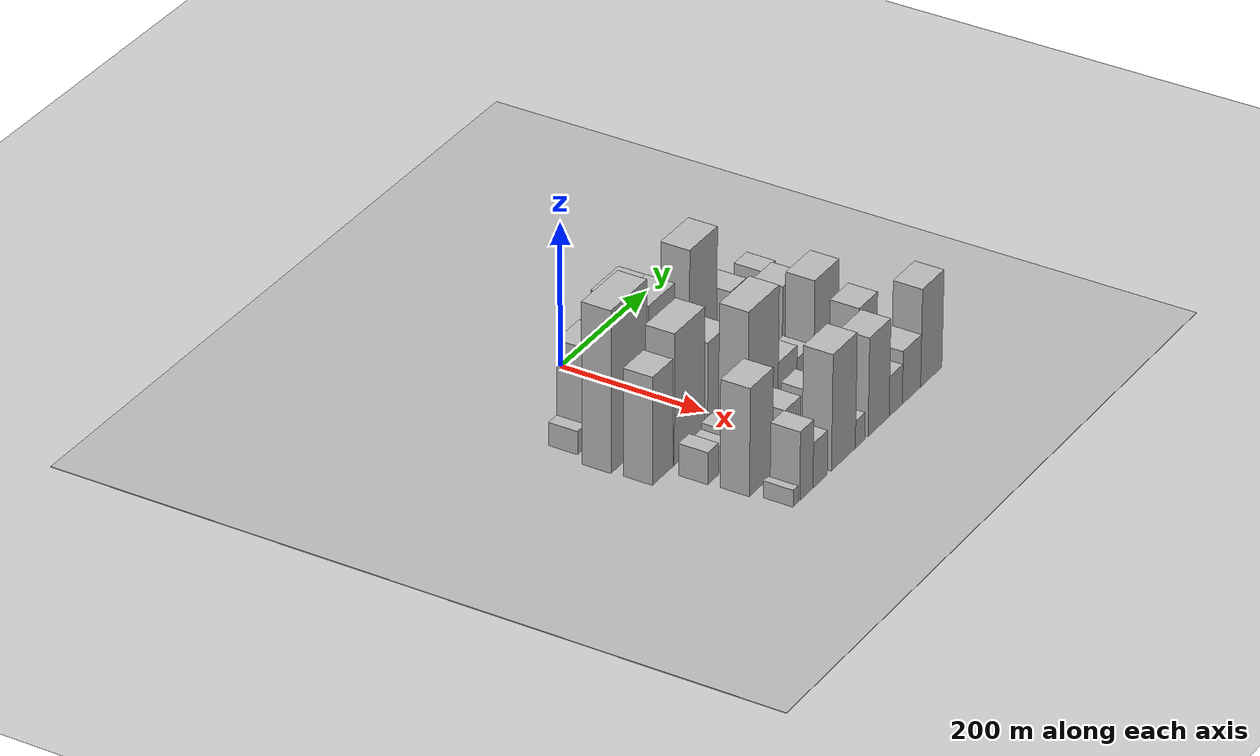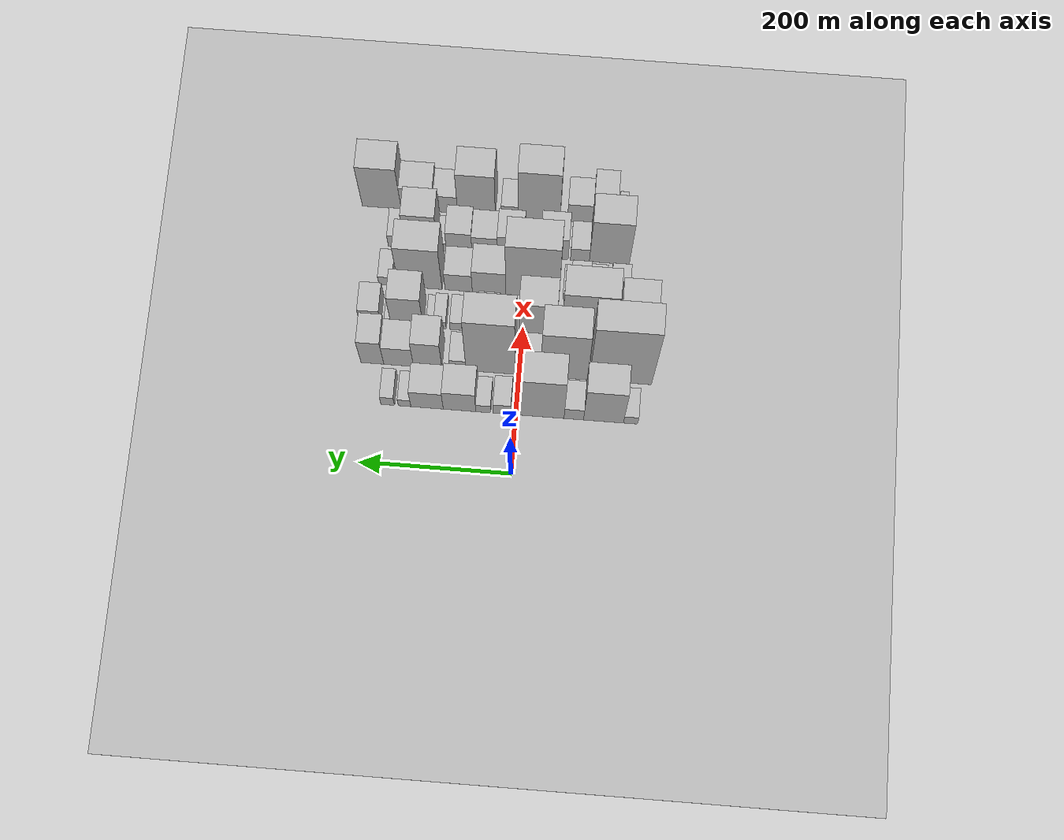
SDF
<sdf version="1.6">
 <world name="default">
  <include><name>ground_plane_1</name><uri>model://HANNAS_ground_plane</uri></include>
  <include>
   <name>ground_plane_2</name>
   <uri>model://HANNAS_ground_plane</uri>
   <pose>100 0 0  0 0 0</pose>
  </include>
  <model name="building_18">
   <static>1</static>
   <pose>100.0000 -150.8019 0 0.000000 0.000000 0.000000</pose>
   <link name="link">
    <pose>0 0 16.50 0 0 0</pose>
    <collision name="collision"><geometry><box><size>40.0000 18.6569 33.0000</size></box></geometry></collision>
    <visual name="visual">
     <cast_shadows>0</cast_shadows>
     <geometry><box><size>40.0000 18.6569 33.0000</size></box></geometry>
     <material>
      <script>
       <uri>model://HANNAS_wall/materials/scripts</uri>
       <uri>model://HANNAS_wall/materials/textures</uri>
       <name>vrc/HANNAS_wall</name>
      </script>
     </material>
    </visual>
   </link>
  </model>
  <model name="building_19">
   <static>1</static>
   <pose>100.0000 -115.2629 0 0.000000 0.000000 0.000000</pose>
   <link name="link">
    <pose>0 0 69.00 0 0 0</pose>
    <collision name="collision"><geometry><box><size>40.0000 52.4211 138.0000</size></box></geometry></collision>
    <visual name="visual">
     <cast_shadows>0</cast_shadows>
     <geometry><box><size>40.0000 52.4211 138.0000</size></box></geometry>
     <material>
      <script>
       <uri>model://HANNAS_wall/materials/scripts</uri>
       <uri>model://HANNAS_wall/materials/textures</uri>
       <name>vrc/HANNAS_wall</name>
      </script>
     </material>
    </visual>
   </link>
  </model>
  <model name="building_20">
   <static>1</static>
   <pose>100.0000 -76.1995 0 0.000000 0.000000 0.000000</pose>
   <link name="link">
    <pose>0 0 24.00 0 0 0</pose>
    <collision name="collision"><geometry><box><size>40.0000 25.7056 48.0000</size></box></geometry></collision>
    <visual name="visual">
     <cast_shadows>0</cast_shadows>
     <geometry><box><size>40.0000 25.7056 48.0000</size></box></geometry>
     <material>
      <script>
       <uri>model://HANNAS_wall/materials/scripts</uri>
       <uri>model://HANNAS_wall/materials/textures</uri>
       <name>vrc/HANNAS_wall</name>
      </script>
     </material>
    </visual>
   </link>
  </model>
  <model name="building_21">
   <static>1</static>
   <pose>100.0000 -31.2883 0 0.000000 0.000000 0.000000</pose>
   <link name="link">
    <pose>0 0 82.50 0 0 0</pose>
    <collision name="collision"><geometry><box><size>40.0000 64.1168 165.0000</size></box></geometry></collision>
    <visual name="visual">
     <cast_shadows>0</cast_shadows>
     <geometry><box><size>40.0000 64.1168 165.0000</size></box></geometry>
     <material>
      <script>
       <uri>model://HANNAS_wall/materials/scripts</uri>
       <uri>model://HANNAS_wall/materials/textures</uri>
       <name>vrc/HANNAS_wall</name>
      </script>
     </material>
    </visual>
   </link>
  </model>
  <model name="building_22">
   <static>1</static>
   <pose>100.0000 18.5439 0 0.000000 0.000000 0.000000</pose>
   <link name="link">
    <pose>0 0 21.00 0 0 0</pose>
    <collision name="collision"><geometry><box><size>40.0000 23.5476 42.0000</size></box></geometry></collision>
    <visual name="visual">
     <cast_shadows>0</cast_shadows>
     <geometry><box><size>40.0000 23.5476 42.0000</size></box></geometry>
     <material>
      <script>
       <uri>model://HANNAS_wall/materials/scripts</uri>
       <uri>model://HANNAS_wall/materials/textures</uri>
       <name>vrc/HANNAS_wall</name>
      </script>
     </material>
    </visual>
   </link>
  </model>
  <model name="building_23">
   <static>1</static>
   <pose>100.0000 43.1436 0 0.000000 0.000000 0.000000</pose>
   <link name="link">
    <pose>0 0 16.50 0 0 0</pose>
    <collision name="collision"><geometry><box><size>40.0000 19.6517 33.0000</size></box></geometry></collision>
    <visual name="visual">
     <cast_shadows>0</cast_shadows>
     <geometry><box><size>40.0000 19.6517 33.0000</size></box></geometry>
     <material>
      <script>
       <uri>model://HANNAS_wall/materials/scripts</uri>
       <uri>model://HANNAS_wall/materials/textures</uri>
       <name>vrc/HANNAS_wall</name>
      </script>
     </material>
    </visual>
   </link>
  </model>
  <model name="building_24">
   <static>1</static>
   <pose>100.0000 74.4396 0 0.000000 0.000000 0.000000</pose>
   <link name="link">
    <pose>0 0 40.50 0 0 0</pose>
    <collision name="collision"><geometry><box><size>40.0000 42.9403 81.0000</size></box></geometry></collision>
    <visual name="visual">
     <cast_shadows>0</cast_shadows>
     <geometry><box><size>40.0000 42.9403 81.0000</size></box></geometry>
     <material>
      <script>
       <uri>model://HANNAS_wall/materials/scripts</uri>
       <uri>model://HANNAS_wall/materials/textures</uri>
       <name>vrc/HANNAS_wall</name>
      </script>
     </material>
    </visual>
   </link>
  </model>
  <model name="building_25">
   <static>1</static>
   <pose>100.0000 117.2887 0 0.000000 0.000000 0.000000</pose>
   <link name="link">
    <pose>0 0 36.00 0 0 0</pose>
    <collision name="collision"><geometry><box><size>40.0000 42.7581 72.0000</size></box></geometry></collision>
    <visual name="visual">
     <cast_shadows>0</cast_shadows>
     <geometry><box><size>40.0000 42.7581 72.0000</size></box></geometry>
     <material>
      <script>
       <uri>model://HANNAS_wall/materials/scripts</uri>
       <uri>model://HANNAS_wall/materials/textures</uri>
       <name>vrc/HANNAS_wall</name>
      </script>
     </material>
    </visual>
   </link>
  </model>
  <model name="building_26">
   <static>1</static>
   <pose>100.0000 146.9715 0 0.000000 0.000000 0.000000</pose>
   <link name="link">
    <pose>0 0 15.00 0 0 0</pose>
    <collision name="collision"><geometry><box><size>40.0000 16.6075 30.0000</size></box></geometry></collision>
    <visual name="visual">
     <cast_shadows>0</cast_shadows>
     <geometry><box><size>40.0000 16.6075 30.0000</size></box></geometry>
     <material>
      <script>
       <uri>model://HANNAS_wall/materials/scripts</uri>
       <uri>model://HANNAS_wall/materials/textures</uri>
       <name>vrc/HANNAS_wall</name>
      </script>
     </material>
    </visual>
   </link>
  </model>
  <model name="building_27">
   <static>1</static>
   <pose>100.0000 169.2999 0 0.000000 0.000000 0.000000</pose>
   <link name="link">
    <pose>0 0 18.00 0 0 0</pose>
    <collision name="collision"><geometry><box><size>40.0000 18.0493 36.0000</size></box></geometry></collision>
    <visual name="visual">
     <cast_shadows>0</cast_shadows>
     <geometry><box><size>40.0000 18.0493 36.0000</size></box></geometry>
     <material>
      <script>
       <uri>model://HANNAS_wall/materials/scripts</uri>
       <uri>model://HANNAS_wall/materials/textures</uri>
       <name>vrc/HANNAS_wall</name>
      </script>
     </material>
    </visual>
   </link>
  </model>
  <model name="building_70">
   <static>1</static>
   <pose>155.0000 -133.8732 0 0.000000 0.000000 0.000000</pose>
   <link name="link">
    <pose>0 0 112.50 0 0 0</pose>
    <collision name="collision"><geometry><box><size>40.0000 82.3018 225.0000</size></box></geometry></collision>
    <visual name="visual">
     <cast_shadows>0</cast_shadows>
     <geometry><box><size>40.0000 82.3018 225.0000</size></box></geometry>
     <material>
      <script>
       <uri>model://HANNAS_wall/materials/scripts</uri>
       <uri>model://HANNAS_wall/materials/textures</uri>
       <name>vrc/HANNAS_wall</name>
      </script>
     </material>
    </visual>
   </link>
  </model>
  <model name="building_71">
   <static>1</static>
   <pose>155.0000 -59.0609 0 0.000000 0.000000 0.000000</pose>
   <link name="link">
    <pose>0 0 93.00 0 0 0</pose>
    <collision name="collision"><geometry><box><size>40.0000 61.3227 186.0000</size></box></geometry></collision>
    <visual name="visual">
     <cast_shadows>0</cast_shadows>
     <geometry><box><size>40.0000 61.3227 186.0000</size></box></geometry>
     <material>
      <script>
       <uri>model://HANNAS_wall/materials/scripts</uri>
       <uri>model://HANNAS_wall/materials/textures</uri>
       <name>vrc/HANNAS_wall</name>
      </script>
     </material>
    </visual>
   </link>
  </model>
  <model name="building_72">
   <static>1</static>
   <pose>155.0000 -11.2397 0 0.000000 0.000000 0.000000</pose>
   <link name="link">
    <pose>0 0 31.50 0 0 0</pose>
    <collision name="collision"><geometry><box><size>40.0000 34.3198 63.0000</size></box></geometry></collision>
    <visual name="visual">
     <cast_shadows>0</cast_shadows>
     <geometry><box><size>40.0000 34.3198 63.0000</size></box></geometry>
     <material>
      <script>
       <uri>model://HANNAS_wall/materials/scripts</uri>
       <uri>model://HANNAS_wall/materials/textures</uri>
       <name>vrc/HANNAS_wall</name>
      </script>
     </material>
    </visual>
   </link>
  </model>
  <model name="building_73">
   <static>1</static>
   <pose>155.0000 38.2795 0 0.000000 0.000000 0.000000</pose>
   <link name="link">
    <pose>0 0 106.50 0 0 0</pose>
    <collision name="collision"><geometry><box><size>40.0000 64.7186 213.0000</size></box></geometry></collision>
    <visual name="visual">
     <cast_shadows>0</cast_shadows>
     <geometry><box><size>40.0000 64.7186 213.0000</size></box></geometry>
     <material>
      <script>
       <uri>model://HANNAS_wall/materials/scripts</uri>
       <uri>model://HANNAS_wall/materials/textures</uri>
       <name>vrc/HANNAS_wall</name>
      </script>
     </material>
    </visual>
   </link>
  </model>
  <model name="building_74">
   <static>1</static>
   <pose>155.0000 81.6243 0 0.000000 0.000000 0.000000</pose>
   <link name="link">
    <pose>0 0 21.00 0 0 0</pose>
    <collision name="collision"><geometry><box><size>40.0000 21.9709 42.0000</size></box></geometry></collision>
    <visual name="visual">
     <cast_shadows>0</cast_shadows>
     <geometry><box><size>40.0000 21.9709 42.0000</size></box></geometry>
     <material>
      <script>
       <uri>model://HANNAS_wall/materials/scripts</uri>
       <uri>model://HANNAS_wall/materials/textures</uri>
       <name>vrc/HANNAS_wall</name>
      </script>
     </material>
    </visual>
   </link>
  </model>
  <model name="building_75">
   <static>1</static>
   <pose>155.0000 121.5219 0 0.000000 0.000000 0.000000</pose>
   <link name="link">
    <pose>0 0 52.50 0 0 0</pose>
    <collision name="collision"><geometry><box><size>40.0000 37.8243 105.0000</size></box></geometry></collision>
    <visual name="visual">
     <cast_shadows>0</cast_shadows>
     <geometry><box><size>40.0000 37.8243 105.0000</size></box></geometry>
     <material>
      <script>
       <uri>model://HANNAS_wall/materials/scripts</uri>
       <uri>model://HANNAS_wall/materials/textures</uri>
       <name>vrc/HANNAS_wall</name>
      </script>
     </material>
    </visual>
   </link>
  </model>
  <model name="building_76">
   <static>1</static>
   <pose>155.0000 160.1553 0 0.000000 0.000000 0.000000</pose>
   <link name="link">
    <pose>0 0 37.50 0 0 0</pose>
    <collision name="collision"><geometry><box><size>40.0000 39.4426 75.0000</size></box></geometry></collision>
    <visual name="visual">
     <cast_shadows>0</cast_shadows>
     <geometry><box><size>40.0000 39.4426 75.0000</size></box></geometry>
     <material>
      <script>
       <uri>model://HANNAS_wall/materials/scripts</uri>
       <uri>model://HANNAS_wall/materials/textures</uri>
       <name>vrc/HANNAS_wall</name>
      </script>
     </material>
    </visual>
   </link>
  </model>
  <model name="building_77">
   <static>1</static>
   <pose>155.0000 195.1086 0 0.000000 0.000000 0.000000</pose>
   <link name="link">
    <pose>0 0 46.50 0 0 0</pose>
    <collision name="collision"><geometry><box><size>40.0000 30.4640 93.0000</size></box></geometry></collision>
    <visual name="visual">
     <cast_shadows>0</cast_shadows>
     <geometry><box><size>40.0000 30.4640 93.0000</size></box></geometry>
     <material>
      <script>
       <uri>model://HANNAS_wall/materials/scripts</uri>
       <uri>model://HANNAS_wall/materials/textures</uri>
       <name>vrc/HANNAS_wall</name>
      </script>
     </material>
    </visual>
   </link>
  </model>
  <model name="building_119">
   <static>1</static>
   <pose>210.0000 -148.7562 0 0.000000 0.000000 0.000000</pose>
   <link name="link">
    <pose>0 0 75.00 0 0 0</pose>
    <collision name="collision"><geometry><box><size>40.0000 46.8835 150.0000</size></box></geometry></collision>
    <visual name="visual">
     <cast_shadows>0</cast_shadows>
     <geometry><box><size>40.0000 46.8835 150.0000</size></box></geometry>
     <material>
      <script>
       <uri>model://HANNAS_wall/materials/scripts</uri>
       <uri>model://HANNAS_wall/materials/textures</uri>
       <name>vrc/HANNAS_wall</name>
      </script>
     </material>
    </visual>
   </link>
  </model>
  <model name="building_120">
   <static>1</static>
   <pose>210.0000 -87.0264 0 0.000000 0.000000 0.000000</pose>
   <link name="link">
    <pose>0 0 91.50 0 0 0</pose>
    <collision name="collision"><geometry><box><size>40.0000 70.5760 183.0000</size></box></geometry></collision>
    <visual name="visual">
     <cast_shadows>0</cast_shadows>
     <geometry><box><size>40.0000 70.5760 183.0000</size></box></geometry>
     <material>
      <script>
       <uri>model://HANNAS_wall/materials/scripts</uri>
       <uri>model://HANNAS_wall/materials/textures</uri>
       <name>vrc/HANNAS_wall</name>
      </script>
     </material>
    </visual>
   </link>
  </model>
  <model name="building_121">
   <static>1</static>
   <pose>210.0000 -19.8621 0 0.000000 0.000000 0.000000</pose>
   <link name="link">
    <pose>0 0 64.50 0 0 0</pose>
    <collision name="collision"><geometry><box><size>40.0000 49.7526 129.0000</size></box></geometry></collision>
    <visual name="visual">
     <cast_shadows>0</cast_shadows>
     <geometry><box><size>40.0000 49.7526 129.0000</size></box></geometry>
     <material>
      <script>
       <uri>model://HANNAS_wall/materials/scripts</uri>
       <uri>model://HANNAS_wall/materials/textures</uri>
       <name>vrc/HANNAS_wall</name>
      </script>
     </material>
    </visual>
   </link>
  </model>
  <model name="building_122">
   <static>1</static>
   <pose>210.0000 16.7778 0 0.000000 0.000000 0.000000</pose>
   <link name="link">
    <pose>0 0 10.50 0 0 0</pose>
    <collision name="collision"><geometry><box><size>40.0000 9.5271 21.0000</size></box></geometry></collision>
    <visual name="visual">
     <cast_shadows>0</cast_shadows>
     <geometry><box><size>40.0000 9.5271 21.0000</size></box></geometry>
     <material>
      <script>
       <uri>model://HANNAS_wall/materials/scripts</uri>
       <uri>model://HANNAS_wall/materials/textures</uri>
       <name>vrc/HANNAS_wall</name>
      </script>
     </material>
    </visual>
   </link>
  </model>
  <model name="building_123">
   <static>1</static>
   <pose>210.0000 25.4149 0 0.000000 0.000000 0.000000</pose>
   <link name="link">
    <pose>0 0 9.00 0 0 0</pose>
    <collision name="collision"><geometry><box><size>40.0000 7.7472 18.0000</size></box></geometry></collision>
    <visual name="visual">
     <cast_shadows>0</cast_shadows>
     <geometry><box><size>40.0000 7.7472 18.0000</size></box></geometry>
     <material>
      <script>
       <uri>model://HANNAS_wall/materials/scripts</uri>
       <uri>model://HANNAS_wall/materials/textures</uri>
       <name>vrc/HANNAS_wall</name>
      </script>
     </material>
    </visual>
   </link>
  </model>
  <model name="building_124">
   <static>1</static>
   <pose>210.0000 47.0669 0 0.000000 0.000000 0.000000</pose>
   <link name="link">
    <pose>0 0 25.50 0 0 0</pose>
    <collision name="collision"><geometry><box><size>40.0000 27.5567 51.0000</size></box></geometry></collision>
    <visual name="visual">
     <cast_shadows>0</cast_shadows>
     <geometry><box><size>40.0000 27.5567 51.0000</size></box></geometry>
     <material>
      <script>
       <uri>model://HANNAS_wall/materials/scripts</uri>
       <uri>model://HANNAS_wall/materials/textures</uri>
       <name>vrc/HANNAS_wall</name>
      </script>
     </material>
    </visual>
   </link>
  </model>
  <model name="building_125">
   <static>1</static>
   <pose>210.0000 66.3693 0 0.000000 0.000000 0.000000</pose>
   <link name="link">
    <pose>0 0 12.00 0 0 0</pose>
    <collision name="collision"><geometry><box><size>40.0000 11.0480 24.0000</size></box></geometry></collision>
    <visual name="visual">
     <cast_shadows>0</cast_shadows>
     <geometry><box><size>40.0000 11.0480 24.0000</size></box></geometry>
     <material>
      <script>
       <uri>model://HANNAS_wall/materials/scripts</uri>
       <uri>model://HANNAS_wall/materials/textures</uri>
       <name>vrc/HANNAS_wall</name>
      </script>
     </material>
    </visual>
   </link>
  </model>
  <model name="building_126">
   <static>1</static>
   <pose>210.0000 88.8799 0 0.000000 0.000000 0.000000</pose>
   <link name="link">
    <pose>0 0 15.00 0 0 0</pose>
    <collision name="collision"><geometry><box><size>40.0000 15.9732 30.0000</size></box></geometry></collision>
    <visual name="visual">
     <cast_shadows>0</cast_shadows>
     <geometry><box><size>40.0000 15.9732 30.0000</size></box></geometry>
     <material>
      <script>
       <uri>model://HANNAS_wall/materials/scripts</uri>
       <uri>model://HANNAS_wall/materials/textures</uri>
       <name>vrc/HANNAS_wall</name>
      </script>
     </material>
    </visual>
   </link>
  </model>
  <model name="building_127">
   <static>1</static>
   <pose>210.0000 109.9628 0 0.000000 0.000000 0.000000</pose>
   <link name="link">
    <pose>0 0 15.00 0 0 0</pose>
    <collision name="collision"><geometry><box><size>40.0000 16.1927 30.0000</size></box></geometry></collision>
    <visual name="visual">
     <cast_shadows>0</cast_shadows>
     <geometry><box><size>40.0000 16.1927 30.0000</size></box></geometry>
     <material>
      <script>
       <uri>model://HANNAS_wall/materials/scripts</uri>
       <uri>model://HANNAS_wall/materials/textures</uri>
       <name>vrc/HANNAS_wall</name>
      </script>
     </material>
    </visual>
   </link>
  </model>
  <model name="building_128">
   <static>1</static>
   <pose>210.0000 123.2397 0 0.000000 0.000000 0.000000</pose>
   <link name="link">
    <pose>0 0 10.50 0 0 0</pose>
    <collision name="collision"><geometry><box><size>40.0000 10.3610 21.0000</size></box></geometry></collision>
    <visual name="visual">
     <cast_shadows>0</cast_shadows>
     <geometry><box><size>40.0000 10.3610 21.0000</size></box></geometry>
     <material>
      <script>
       <uri>model://HANNAS_wall/materials/scripts</uri>
       <uri>model://HANNAS_wall/materials/textures</uri>
       <name>vrc/HANNAS_wall</name>
      </script>
     </material>
    </visual>
   </link>
  </model>
  <model name="building_129">
   <static>1</static>
   <pose>210.0000 153.9851 0 0.000000 0.000000 0.000000</pose>
   <link name="link">
    <pose>0 0 57.00 0 0 0</pose>
    <collision name="collision"><geometry><box><size>40.0000 43.1299 114.0000</size></box></geometry></collision>
    <visual name="visual">
     <cast_shadows>0</cast_shadows>
     <geometry><box><size>40.0000 43.1299 114.0000</size></box></geometry>
     <material>
      <script>
       <uri>model://HANNAS_wall/materials/scripts</uri>
       <uri>model://HANNAS_wall/materials/textures</uri>
       <name>vrc/HANNAS_wall</name>
      </script>
     </material>
    </visual>
   </link>
  </model>
  <model name="building_130">
   <static>1</static>
   <pose>210.0000 179.8836 0 0.000000 0.000000 0.000000</pose>
   <link name="link">
    <pose>0 0 10.50 0 0 0</pose>
    <collision name="collision"><geometry><box><size>40.0000 8.6671 21.0000</size></box></geometry></collision>
    <visual name="visual">
     <cast_shadows>0</cast_shadows>
     <geometry><box><size>40.0000 8.6671 21.0000</size></box></geometry>
     <material>
      <script>
       <uri>model://HANNAS_wall/materials/scripts</uri>
       <uri>model://HANNAS_wall/materials/textures</uri>
       <name>vrc/HANNAS_wall</name>
      </script>
     </material>
    </visual>
   </link>
  </model>
  <model name="building_131">
   <static>1</static>
   <pose>210.0000 203.4865 0 0.000000 0.000000 0.000000</pose>
   <link name="link">
    <pose>0 0 27.00 0 0 0</pose>
    <collision name="collision"><geometry><box><size>40.0000 28.5387 54.0000</size></box></geometry></collision>
    <visual name="visual">
     <cast_shadows>0</cast_shadows>
     <geometry><box><size>40.0000 28.5387 54.0000</size></box></geometry>
     <material>
      <script>
       <uri>model://HANNAS_wall/materials/scripts</uri>
       <uri>model://HANNAS_wall/materials/textures</uri>
       <name>vrc/HANNAS_wall</name>
      </script>
     </material>
    </visual>
   </link>
  </model>
  <model name="building_175">
   <static>1</static>
   <pose>265.0000 -125.1279 0 0.000000 0.000000 0.000000</pose>
   <link name="link">
    <pose>0 0 22.50 0 0 0</pose>
    <collision name="collision"><geometry><box><size>40.0000 25.0067 45.0000</size></box></geometry></collision>
    <visual name="visual">
     <cast_shadows>0</cast_shadows>
     <geometry><box><size>40.0000 25.0067 45.0000</size></box></geometry>
     <material>
      <script>
       <uri>model://HANNAS_wall/materials/scripts</uri>
       <uri>model://HANNAS_wall/materials/textures</uri>
       <name>vrc/HANNAS_wall</name>
      </script>
     </material>
    </visual>
   </link>
  </model>
  <model name="building_176">
   <static>1</static>
   <pose>265.0000 -95.9091 0 0.000000 0.000000 0.000000</pose>
   <link name="link">
    <pose>0 0 18.00 0 0 0</pose>
    <collision name="collision"><geometry><box><size>40.0000 21.4309 36.0000</size></box></geometry></collision>
    <visual name="visual">
     <cast_shadows>0</cast_shadows>
     <geometry><box><size>40.0000 21.4309 36.0000</size></box></geometry>
     <material>
      <script>
       <uri>model://HANNAS_wall/materials/scripts</uri>
       <uri>model://HANNAS_wall/materials/textures</uri>
       <name>vrc/HANNAS_wall</name>
      </script>
     </material>
    </visual>
   </link>
  </model>
  <model name="building_177">
   <static>1</static>
   <pose>265.0000 -72.2502 0 0.000000 0.000000 0.000000</pose>
   <link name="link">
    <pose>0 0 22.50 0 0 0</pose>
    <collision name="collision"><geometry><box><size>40.0000 25.8870 45.0000</size></box></geometry></collision>
    <visual name="visual">
     <cast_shadows>0</cast_shadows>
     <geometry><box><size>40.0000 25.8870 45.0000</size></box></geometry>
     <material>
      <script>
       <uri>model://HANNAS_wall/materials/scripts</uri>
       <uri>model://HANNAS_wall/materials/textures</uri>
       <name>vrc/HANNAS_wall</name>
      </script>
     </material>
    </visual>
   </link>
  </model>
  <model name="building_178">
   <static>1</static>
   <pose>265.0000 -54.4343 0 0.000000 0.000000 0.000000</pose>
   <link name="link">
    <pose>0 0 12.00 0 0 0</pose>
    <collision name="collision"><geometry><box><size>40.0000 9.7447 24.0000</size></box></geometry></collision>
    <visual name="visual">
     <cast_shadows>0</cast_shadows>
     <geometry><box><size>40.0000 9.7447 24.0000</size></box></geometry>
     <material>
      <script>
       <uri>model://HANNAS_wall/materials/scripts</uri>
       <uri>model://HANNAS_wall/materials/textures</uri>
       <name>vrc/HANNAS_wall</name>
      </script>
     </material>
    </visual>
   </link>
  </model>
  <model name="building_179">
   <static>1</static>
   <pose>265.0000 -8.8676 0 0.000000 0.000000 0.000000</pose>
   <link name="link">
    <pose>0 0 94.50 0 0 0</pose>
    <collision name="collision"><geometry><box><size>40.0000 71.3886 189.0000</size></box></geometry></collision>
    <visual name="visual">
     <cast_shadows>0</cast_shadows>
     <geometry><box><size>40.0000 71.3886 189.0000</size></box></geometry>
     <material>
      <script>
       <uri>model://HANNAS_wall/materials/scripts</uri>
       <uri>model://HANNAS_wall/materials/textures</uri>
       <name>vrc/HANNAS_wall</name>
      </script>
     </material>
    </visual>
   </link>
  </model>
  <model name="building_180">
   <static>1</static>
   <pose>265.0000 49.3287 0 0.000000 0.000000 0.000000</pose>
   <link name="link">
    <pose>0 0 40.50 0 0 0</pose>
    <collision name="collision"><geometry><box><size>40.0000 45.0041 81.0000</size></box></geometry></collision>
    <visual name="visual">
     <cast_shadows>0</cast_shadows>
     <geometry><box><size>40.0000 45.0041 81.0000</size></box></geometry>
     <material>
      <script>
       <uri>model://HANNAS_wall/materials/scripts</uri>
       <uri>model://HANNAS_wall/materials/textures</uri>
       <name>vrc/HANNAS_wall</name>
      </script>
     </material>
    </visual>
   </link>
  </model>
  <model name="building_181">
   <static>1</static>
   <pose>265.0000 90.1085 0 0.000000 0.000000 0.000000</pose>
   <link name="link">
    <pose>0 0 31.50 0 0 0</pose>
    <collision name="collision"><geometry><box><size>40.0000 36.5555 63.0000</size></box></geometry></collision>
    <visual name="visual">
     <cast_shadows>0</cast_shadows>
     <geometry><box><size>40.0000 36.5555 63.0000</size></box></geometry>
     <material>
      <script>
       <uri>model://HANNAS_wall/materials/scripts</uri>
       <uri>model://HANNAS_wall/materials/textures</uri>
       <name>vrc/HANNAS_wall</name>
      </script>
     </material>
    </visual>
   </link>
  </model>
  <model name="building_182">
   <static>1</static>
   <pose>265.0000 141.7088 0 0.000000 0.000000 0.000000</pose>
   <link name="link">
    <pose>0 0 75.00 0 0 0</pose>
    <collision name="collision"><geometry><box><size>40.0000 58.6450 150.0000</size></box></geometry></collision>
    <visual name="visual">
     <cast_shadows>0</cast_shadows>
     <geometry><box><size>40.0000 58.6450 150.0000</size></box></geometry>
     <material>
      <script>
       <uri>model://HANNAS_wall/materials/scripts</uri>
       <uri>model://HANNAS_wall/materials/textures</uri>
       <name>vrc/HANNAS_wall</name>
      </script>
     </material>
    </visual>
   </link>
  </model>
  <model name="building_183">
   <static>1</static>
   <pose>265.0000 187.7204 0 0.000000 0.000000 0.000000</pose>
   <link name="link">
    <pose>0 0 16.50 0 0 0</pose>
    <collision name="collision"><geometry><box><size>40.0000 19.3781 33.0000</size></box></geometry></collision>
    <visual name="visual">
     <cast_shadows>0</cast_shadows>
     <geometry><box><size>40.0000 19.3781 33.0000</size></box></geometry>
     <material>
      <script>
       <uri>model://HANNAS_wall/materials/scripts</uri>
       <uri>model://HANNAS_wall/materials/textures</uri>
       <name>vrc/HANNAS_wall</name>
      </script>
     </material>
    </visual>
   </link>
  </model>
  <model name="building_222">
   <static>1</static>
   <pose>320.0000 -108.2381 0 0.000000 0.000000 0.000000</pose>
   <link name="link">
    <pose>0 0 75.00 0 0 0</pose>
    <collision name="collision"><geometry><box><size>40.0000 53.8245 150.0000</size></box></geometry></collision>
    <visual name="visual">
     <cast_shadows>0</cast_shadows>
     <geometry><box><size>40.0000 53.8245 150.0000</size></box></geometry>
     <material>
      <script>
       <uri>model://HANNAS_wall/materials/scripts</uri>
       <uri>model://HANNAS_wall/materials/textures</uri>
       <name>vrc/HANNAS_wall</name>
      </script>
     </material>
    </visual>
   </link>
  </model>
  <model name="building_223">
   <static>1</static>
   <pose>320.0000 -68.5845 0 0.000000 0.000000 0.000000</pose>
   <link name="link">
    <pose>0 0 22.50 0 0 0</pose>
    <collision name="collision"><geometry><box><size>40.0000 25.4828 45.0000</size></box></geometry></collision>
    <visual name="visual">
     <cast_shadows>0</cast_shadows>
     <geometry><box><size>40.0000 25.4828 45.0000</size></box></geometry>
     <material>
      <script>
       <uri>model://HANNAS_wall/materials/scripts</uri>
       <uri>model://HANNAS_wall/materials/textures</uri>
       <name>vrc/HANNAS_wall</name>
      </script>
     </material>
    </visual>
   </link>
  </model>
  <model name="building_224">
   <static>1</static>
   <pose>320.0000 -33.8702 0 0.000000 0.000000 0.000000</pose>
   <link name="link">
    <pose>0 0 37.50 0 0 0</pose>
    <collision name="collision"><geometry><box><size>40.0000 37.9458 75.0000</size></box></geometry></collision>
    <visual name="visual">
     <cast_shadows>0</cast_shadows>
     <geometry><box><size>40.0000 37.9458 75.0000</size></box></geometry>
     <material>
      <script>
       <uri>model://HANNAS_wall/materials/scripts</uri>
       <uri>model://HANNAS_wall/materials/textures</uri>
       <name>vrc/HANNAS_wall</name>
      </script>
     </material>
    </visual>
   </link>
  </model>
  <model name="building_225">
   <static>1</static>
   <pose>320.0000 -3.2689 0 0.000000 0.000000 0.000000</pose>
   <link name="link">
    <pose>0 0 10.50 0 0 0</pose>
    <collision name="collision"><geometry><box><size>40.0000 9.2568 21.0000</size></box></geometry></collision>
    <visual name="visual">
     <cast_shadows>0</cast_shadows>
     <geometry><box><size>40.0000 9.2568 21.0000</size></box></geometry>
     <material>
      <script>
       <uri>model://HANNAS_wall/materials/scripts</uri>
       <uri>model://HANNAS_wall/materials/textures</uri>
       <name>vrc/HANNAS_wall</name>
      </script>
     </material>
    </visual>
   </link>
  </model>
  <model name="building_226">
   <static>1</static>
   <pose>320.0000 25.0802 0 0.000000 0.000000 0.000000</pose>
   <link name="link">
    <pose>0 0 34.50 0 0 0</pose>
    <collision name="collision"><geometry><box><size>40.0000 35.4413 69.0000</size></box></geometry></collision>
    <visual name="visual">
     <cast_shadows>0</cast_shadows>
     <geometry><box><size>40.0000 35.4413 69.0000</size></box></geometry>
     <material>
      <script>
       <uri>model://HANNAS_wall/materials/scripts</uri>
       <uri>model://HANNAS_wall/materials/textures</uri>
       <name>vrc/HANNAS_wall</name>
      </script>
     </material>
    </visual>
   </link>
  </model>
  <model name="building_227">
   <static>1</static>
   <pose>320.0000 59.9531 0 0.000000 0.000000 0.000000</pose>
   <link name="link">
    <pose>0 0 30.00 0 0 0</pose>
    <collision name="collision"><geometry><box><size>40.0000 34.3044 60.0000</size></box></geometry></collision>
    <visual name="visual">
     <cast_shadows>0</cast_shadows>
     <geometry><box><size>40.0000 34.3044 60.0000</size></box></geometry>
     <material>
      <script>
       <uri>model://HANNAS_wall/materials/scripts</uri>
       <uri>model://HANNAS_wall/materials/textures</uri>
       <name>vrc/HANNAS_wall</name>
      </script>
     </material>
    </visual>
   </link>
  </model>
  <model name="building_228">
   <static>1</static>
   <pose>320.0000 94.3920 0 0.000000 0.000000 0.000000</pose>
   <link name="link">
    <pose>0 0 34.50 0 0 0</pose>
    <collision name="collision"><geometry><box><size>40.0000 34.5735 69.0000</size></box></geometry></collision>
    <visual name="visual">
     <cast_shadows>0</cast_shadows>
     <geometry><box><size>40.0000 34.5735 69.0000</size></box></geometry>
     <material>
      <script>
       <uri>model://HANNAS_wall/materials/scripts</uri>
       <uri>model://HANNAS_wall/materials/textures</uri>
       <name>vrc/HANNAS_wall</name>
      </script>
     </material>
    </visual>
   </link>
  </model>
  <model name="building_229">
   <static>1</static>
   <pose>320.0000 117.3488 0 0.000000 0.000000 0.000000</pose>
   <link name="link">
    <pose>0 0 13.50 0 0 0</pose>
    <collision name="collision"><geometry><box><size>40.0000 11.3402 27.0000</size></box></geometry></collision>
    <visual name="visual">
     <cast_shadows>0</cast_shadows>
     <geometry><box><size>40.0000 11.3402 27.0000</size></box></geometry>
     <material>
      <script>
       <uri>model://HANNAS_wall/materials/scripts</uri>
       <uri>model://HANNAS_wall/materials/textures</uri>
       <name>vrc/HANNAS_wall</name>
      </script>
     </material>
    </visual>
   </link>
  </model>
  <model name="building_230">
   <static>1</static>
   <pose>320.0000 145.2753 0 0.000000 0.000000 0.000000</pose>
   <link name="link">
    <pose>0 0 61.50 0 0 0</pose>
    <collision name="collision"><geometry><box><size>40.0000 44.5128 123.0000</size></box></geometry></collision>
    <visual name="visual">
     <cast_shadows>0</cast_shadows>
     <geometry><box><size>40.0000 44.5128 123.0000</size></box></geometry>
     <material>
      <script>
       <uri>model://HANNAS_wall/materials/scripts</uri>
       <uri>model://HANNAS_wall/materials/textures</uri>
       <name>vrc/HANNAS_wall</name>
      </script>
     </material>
    </visual>
   </link>
  </model>
  <model name="building_231">
   <static>1</static>
   <pose>320.0000 178.7404 0 0.000000 0.000000 0.000000</pose>
   <link name="link">
    <pose>0 0 21.00 0 0 0</pose>
    <collision name="collision"><geometry><box><size>40.0000 22.4174 42.0000</size></box></geometry></collision>
    <visual name="visual">
     <cast_shadows>0</cast_shadows>
     <geometry><box><size>40.0000 22.4174 42.0000</size></box></geometry>
     <material>
      <script>
       <uri>model://HANNAS_wall/materials/scripts</uri>
       <uri>model://HANNAS_wall/materials/textures</uri>
       <name>vrc/HANNAS_wall</name>
      </script>
     </material>
    </visual>
   </link>
  </model>
  <model name="building_268">
   <static>1</static>
   <pose>375.0000 -122.5893 0 0.000000 0.000000 0.000000</pose>
   <link name="link">
    <pose>0 0 12.00 0 0 0</pose>
    <collision name="collision"><geometry><box><size>40.0000 11.4673 24.0000</size></box></geometry></collision>
    <visual name="visual">
     <cast_shadows>0</cast_shadows>
     <geometry><box><size>40.0000 11.4673 24.0000</size></box></geometry>
     <material>
      <script>
       <uri>model://HANNAS_wall/materials/scripts</uri>
       <uri>model://HANNAS_wall/materials/textures</uri>
       <name>vrc/HANNAS_wall</name>
      </script>
     </material>
    </visual>
   </link>
  </model>
  <model name="building_269">
   <static>1</static>
   <pose>375.0000 -97.1758 0 0.000000 0.000000 0.000000</pose>
   <link name="link">
    <pose>0 0 48.00 0 0 0</pose>
    <collision name="collision"><geometry><box><size>40.0000 31.3598 96.0000</size></box></geometry></collision>
    <visual name="visual">
     <cast_shadows>0</cast_shadows>
     <geometry><box><size>40.0000 31.3598 96.0000</size></box></geometry>
     <material>
      <script>
       <uri>model://HANNAS_wall/materials/scripts</uri>
       <uri>model://HANNAS_wall/materials/textures</uri>
       <name>vrc/HANNAS_wall</name>
      </script>
     </material>
    </visual>
   </link>
  </model>
  <model name="building_270">
   <static>1</static>
   <pose>375.0000 -64.6158 0 0.000000 0.000000 0.000000</pose>
   <link name="link">
    <pose>0 0 31.50 0 0 0</pose>
    <collision name="collision"><geometry><box><size>40.0000 33.7604 63.0000</size></box></geometry></collision>
    <visual name="visual">
     <cast_shadows>0</cast_shadows>
     <geometry><box><size>40.0000 33.7604 63.0000</size></box></geometry>
     <material>
      <script>
       <uri>model://HANNAS_wall/materials/scripts</uri>
       <uri>model://HANNAS_wall/materials/textures</uri>
       <name>vrc/HANNAS_wall</name>
      </script>
     </material>
    </visual>
   </link>
  </model>
  <model name="building_271">
   <static>1</static>
   <pose>375.0000 -9.0972 0 0.000000 0.000000 0.000000</pose>
   <link name="link">
    <pose>0 0 81.00 0 0 0</pose>
    <collision name="collision"><geometry><box><size>40.0000 57.2768 162.0000</size></box></geometry></collision>
    <visual name="visual">
     <cast_shadows>0</cast_shadows>
     <geometry><box><size>40.0000 57.2768 162.0000</size></box></geometry>
     <material>
      <script>
       <uri>model://HANNAS_wall/materials/scripts</uri>
       <uri>model://HANNAS_wall/materials/textures</uri>
       <name>vrc/HANNAS_wall</name>
      </script>
     </material>
    </visual>
   </link>
  </model>
  <model name="building_272">
   <static>1</static>
   <pose>375.0000 30.7865 0 0.000000 0.000000 0.000000</pose>
   <link name="link">
    <pose>0 0 19.50 0 0 0</pose>
    <collision name="collision"><geometry><box><size>40.0000 22.4905 39.0000</size></box></geometry></collision>
    <visual name="visual">
     <cast_shadows>0</cast_shadows>
     <geometry><box><size>40.0000 22.4905 39.0000</size></box></geometry>
     <material>
      <script>
       <uri>model://HANNAS_wall/materials/scripts</uri>
       <uri>model://HANNAS_wall/materials/textures</uri>
       <name>vrc/HANNAS_wall</name>
      </script>
     </material>
    </visual>
   </link>
  </model>
  <model name="building_273">
   <static>1</static>
   <pose>375.0000 75.6074 0 0.000000 0.000000 0.000000</pose>
   <link name="link">
    <pose>0 0 69.00 0 0 0</pose>
    <collision name="collision"><geometry><box><size>40.0000 51.1513 138.0000</size></box></geometry></collision>
    <visual name="visual">
     <cast_shadows>0</cast_shadows>
     <geometry><box><size>40.0000 51.1513 138.0000</size></box></geometry>
     <material>
      <script>
       <uri>model://HANNAS_wall/materials/scripts</uri>
       <uri>model://HANNAS_wall/materials/textures</uri>
       <name>vrc/HANNAS_wall</name>
      </script>
     </material>
    </visual>
   </link>
  </model>
  <model name="building_274">
   <static>1</static>
   <pose>375.0000 117.1706 0 0.000000 0.000000 0.000000</pose>
   <link name="link">
    <pose>0 0 28.50 0 0 0</pose>
    <collision name="collision"><geometry><box><size>40.0000 31.9752 57.0000</size></box></geometry></collision>
    <visual name="visual">
     <cast_shadows>0</cast_shadows>
     <geometry><box><size>40.0000 31.9752 57.0000</size></box></geometry>
     <material>
      <script>
       <uri>model://HANNAS_wall/materials/scripts</uri>
       <uri>model://HANNAS_wall/materials/textures</uri>
       <name>vrc/HANNAS_wall</name>
      </script>
     </material>
    </visual>
   </link>
  </model>
  <model name="building_275">
   <static>1</static>
   <pose>375.0000 155.6520 0 0.000000 0.000000 0.000000</pose>
   <link name="link">
    <pose>0 0 37.50 0 0 0</pose>
    <collision name="collision"><geometry><box><size>40.0000 44.9876 75.0000</size></box></geometry></collision>
    <visual name="visual">
     <cast_shadows>0</cast_shadows>
     <geometry><box><size>40.0000 44.9876 75.0000</size></box></geometry>
     <material>
      <script>
       <uri>model://HANNAS_wall/materials/scripts</uri>
       <uri>model://HANNAS_wall/materials/textures</uri>
       <name>vrc/HANNAS_wall</name>
      </script>
     </material>
    </visual>
   </link>
  </model>
  <model name="building_276">
   <static>1</static>
   <pose>375.0000 204.5060 0 0.000000 0.000000 0.000000</pose>
   <link name="link">
    <pose>0 0 69.00 0 0 0</pose>
    <collision name="collision"><geometry><box><size>40.0000 52.7204 138.0000</size></box></geometry></collision>
    <visual name="visual">
     <cast_shadows>0</cast_shadows>
     <geometry><box><size>40.0000 52.7204 138.0000</size></box></geometry>
     <material>
      <script>
       <uri>model://HANNAS_wall/materials/scripts</uri>
       <uri>model://HANNAS_wall/materials/textures</uri>
       <name>vrc/HANNAS_wall</name>
      </script>
     </material>
    </visual>
   </link>
  </model>
 </world>
</sdf>
